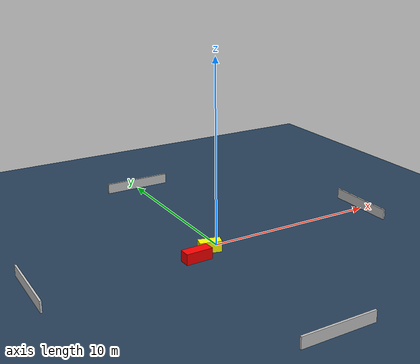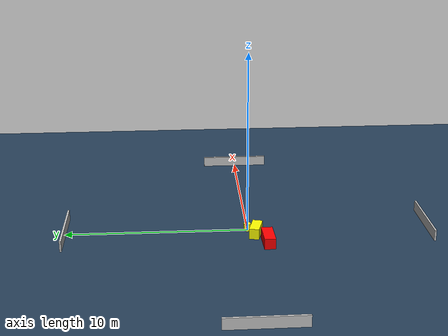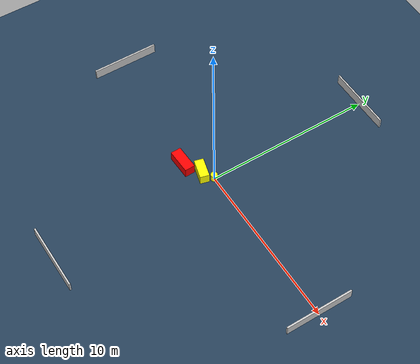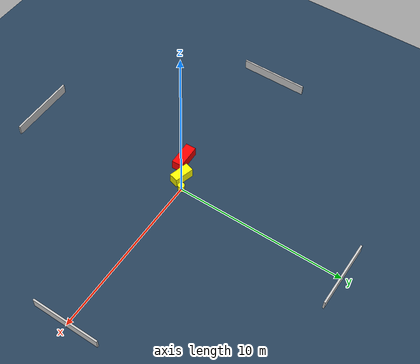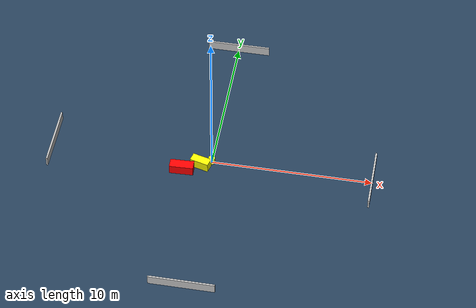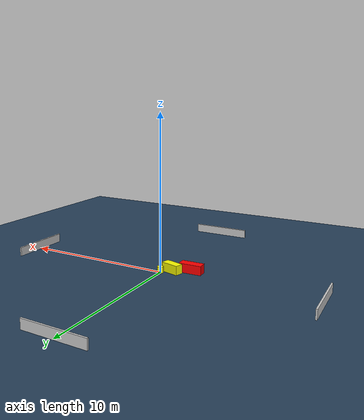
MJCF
<?xml version="1.0" ?>
<mujoco model="generated_environment">
  <option timestep="0.01" integrator="RK4" cone="elliptic"/>
  <default>
    <geom density="1"/>
  </default>
  <asset>
    <texture builtin="gradient" height="3072" name="skybox" rgb1="0.3 0.5 0.7" rgb2="0 0 0" type="skybox" width="512"/>
    <texture builtin="checker" height="300" name="groundplane" rgb1="0.2 0.3 0.4" rgb2="0.1 0.2 0.3" type="2d" width="300"/>
    <material name="groundplane" reflectance="0.2" texrepeat="5 5" texture="groundplane"/>
  </asset>
  <worldbody>
    <light dir="0 0 -1" directional="true" pos="0 0 1.5"/>
    <geom condim="3" friction="0.5 0.005 0.001" material="groundplane" name="floor" pos="0 0 0" size="0 0 0.05" type="plane"/>
    <body name="walls">
      <geom name="wall_1" condim="4" pos="-10.0 0.0 0.3" rgba="0.800000011920929 0.800000011920929 0.800000011920929 1.0" size="0.05 2.0 0.3" type="box"/>
      <geom name="wall_2" condim="4" pos="10.0 0.0 0.3" rgba="0.800000011920929 0.800000011920929 0.800000011920929 1.0" size="0.05 2.0 0.3" type="box"/>
      <geom name="wall_3" condim="4" pos="0.0 -10.0 0.3" rgba="0.800000011920929 0.800000011920929 0.800000011920929 1.0" size="2.0 0.05 0.3" type="box"/>
      <geom name="wall_4" condim="4" pos="0.0 10.0 0.3" rgba="0.800000011920929 0.800000011920929 0.800000011920929 1.0" size="2.0 0.05 0.3" type="box"/>
    </body>
    <body name="robot">
      <joint name="joint_x" type="slide" pos="0 0 0" axis="1 0 0"/>
      <joint name="joint_y" type="slide" pos="0 0 0" axis="0 1 0"/>
      <geom name="robot" type="cylinder" pos="0.0 0.0 0.2" size="0.2 0.2 0.0" mass="5.0" friction="1.0 0.005 0.0001" condim="4" rgba="1.0 1.0 0.0 1.0"/>
    </body>
    <body name="obstacle_1_movable">
      <geom name="obstacle_1_movable" condim="4" pos="-0.6273935872082145 -0.4181027513588624 0.3" euler="0 0 164.8545795507978" friction="0.0 0.005 0.001" rgba="1.0 1.0 0.0 1.0" size="0.5973435376802982 0.27382628671013975 0.3" type="box" mass="0.1"/>
      <joint type="free"/>
    </body>
    <body name="obstacle_2_static">
      <geom name="obstacle_2_static" condim="4" pos="-1.7063437539253636 -0.9888335718629796 0.3" euler="0 0 1.8311797327554036" friction="0.0 0.005 0.001" rgba="1.0 0.0 0.0 1.0" size="0.7400071706960389 0.30686059554484496 0.3" type="box"/>
    </body>
  </worldbody>
  <actuator>
    <motor name="actuator_x" joint="joint_x" gear="1" ctrlrange="-1 1"/>
    <motor name="actuator_y" joint="joint_y" gear="1" ctrlrange="-1 1"/>
  </actuator>
</mujoco>
